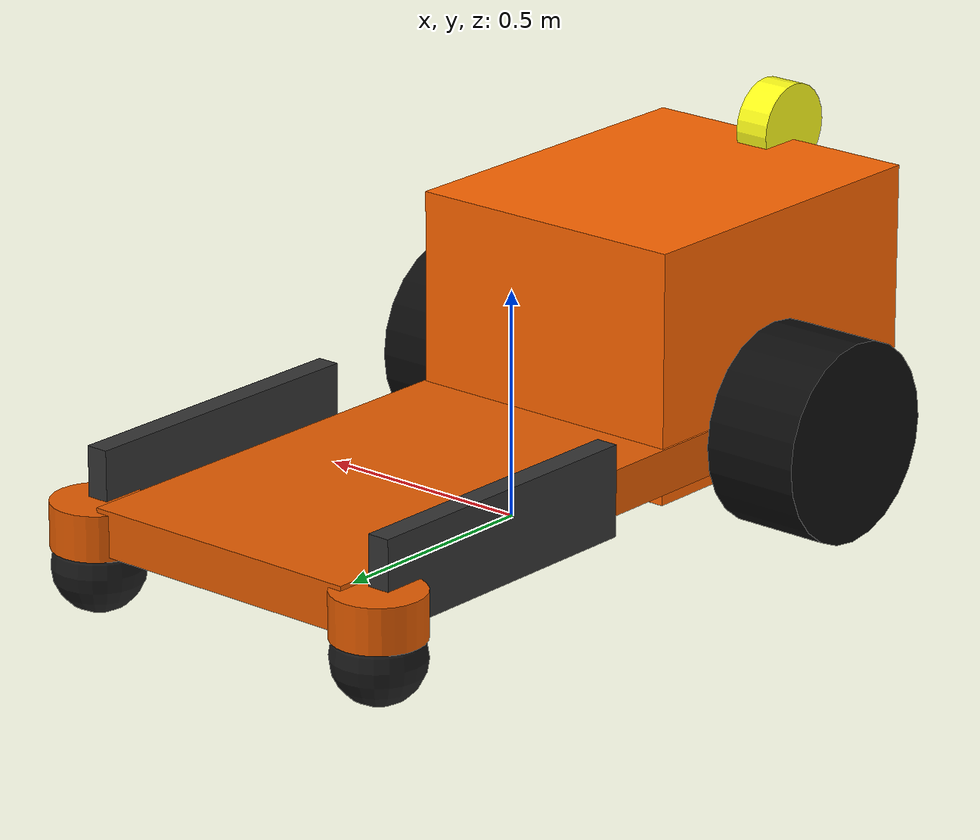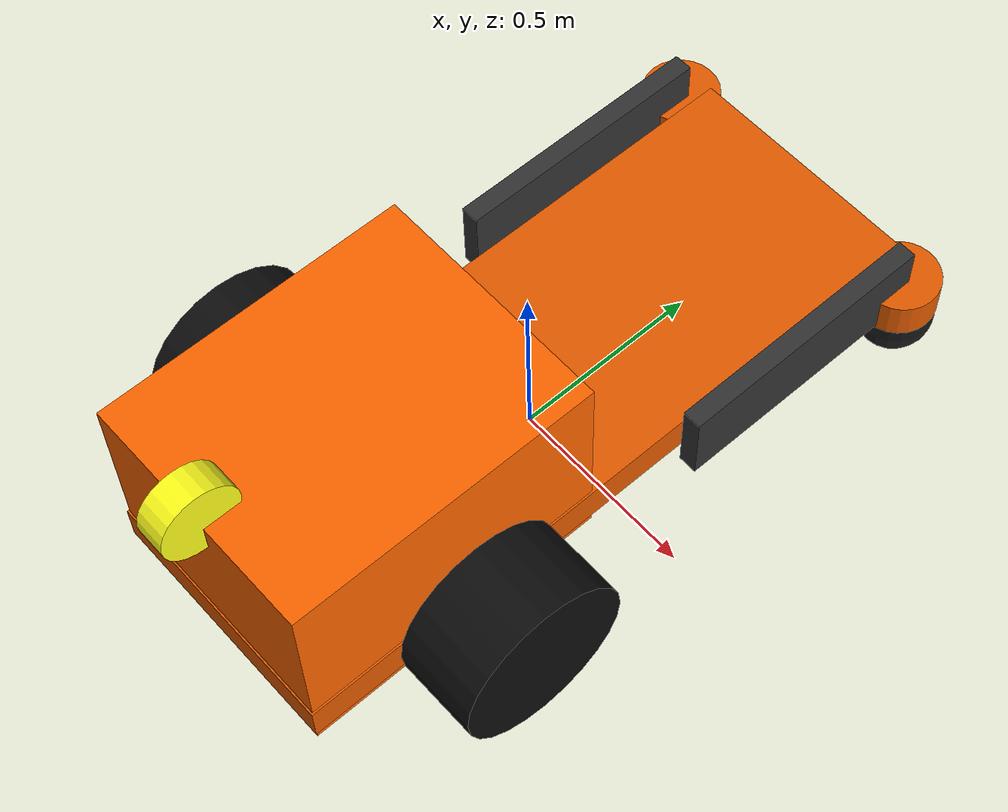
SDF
<sdf version="1.7">
 <world name="runway">
  <plugin filename="gz-sim-physics-system" name="gz::sim::systems::Physics"/>
  <plugin filename="gz-sim-user-commands-system" name="gz::sim::systems::UserCommands"/>
  <plugin filename="gz-sim-scene-broadcaster-system" name="gz::sim::systems::SceneBroadcaster"/>
  <plugin filename="gz-sim-imu-system" name="gz::sim::systems::Imu"/>
  <plugin filename="gz-sim-magnetometer-system" name="gz::sim::systems::Magnetometer"/>
  <plugin filename="gz-sim-navsat-system" name="gz::sim::systems::NavSat"/>
  <scene><ambient>1.0 1.0 1.0</ambient><background>0.8 0.8 0.8</background></scene>
  <light type="directional" name="sun">
   <pose>0 0 10 0 0 0</pose>
   <diffuse>0.8 0.8 0.8 1</diffuse>
   <specular>0.8 0.8 0.8 1</specular>
   <attenuation>
    <range>1000</range>
    <constant>0.9</constant>
    <linear>0.01</linear>
    <quadratic>0.001</quadratic>
   </attenuation>
   <direction>-0.5 0.1 -0.9</direction>
  </light>
  <include><pose degrees="true">0 0 0.15 0 0 90</pose><uri>model://lawnmower</uri></include>
 </world>
</sdf>

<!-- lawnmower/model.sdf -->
<sdf version="1.9">
  <model name="lawnmower">
    <static>0</static>
    <self_collide>false</self_collide>

    <link name="base_link">
      <pose>0 0 0 0 0 0</pose>
      <inertial>
        <pose>-0.1 0 0.1 0 0 0</pose>
        <mass>220.0</mass>
        <inertia>
          <ixx>40</ixx>
          <ixy>0.0</ixy>
          <iyy>150</iyy>
          <ixz>0.0</ixz>
          <iyz>0.0</iyz>
          <izz>150</izz>
        </inertia>
      </inertial>
      <collision name="base_collision">
        <pose>0 0 0.2 0 0 0</pose>
        <geometry>
          <box>
            <size>1.8 0.65 0.55</size>
          </box>
        </geometry>
        <surface>
          <contact>
            <ode />
          </contact>
          <friction>
            <ode />
          </friction>
        </surface>
      </collision>
      <visual name="base_visual_base">
        <pose>0 0 0 0 0 0</pose>
        <geometry>
          <box>
            <size>1.81 0.66 0.1</size>
          </box>
        </geometry>
        <material>
          <ambient>0.9 0.36 0 1</ambient>
          <diffuse>0.9 0.36 0 1</diffuse>
          <specular>0.3 0.3 0.3 1</specular>
          <emissive>0 0 0 1</emissive>
        </material>
      </visual>
      <visual name="base_visual">
        <pose>-0.5 0 0.2 0 0 0</pose>
        <geometry>
          <box>
            <size>0.8 0.65 0.55</size>
          </box>
        </geometry>
        <material>
          <ambient>1.0 0.4 0 1</ambient>
          <diffuse>1.0 0.4 0 1</diffuse>
          <specular>0.3 0.3 0.3 1</specular>
          <emissive>0.2 0.08 0 1</emissive>
        </material>
      </visual>
      <collision name="left_caster_collision">
        <pose>0.85 0.38 -0.1 0 0 0</pose>
        <geometry>
          <sphere>
            <radius>.1</radius>
          </sphere>
        </geometry>
        <surface>
          <friction>
            <ode>
              <mu>0</mu>
              <mu2>0</mu2>
              <slip1>1.0</slip1>
              <slip2>1.0</slip2>
            </ode>
          </friction>
        </surface>
      </collision>
      <visual name="left_caster_visual_base">
        <pose>0.85 0.38 -0.01 0 0 0</pose>
        <geometry>
          <cylinder>
            <radius>0.1</radius>
            <length>0.1</length>
          </cylinder>
        </geometry>
        <material>
          <ambient>0.9 0.36 0 1</ambient>
          <diffuse>0.9 0.36 0 1</diffuse>
          <specular>0.3 0.3 0.3 1</specular>
          <emissive>0 0 0 1</emissive>
        </material>
      </visual>
      <visual name="left_caster_fork">
        <pose>0.5 0.38 0.05 0 0 0</pose>
        <geometry>
          <box>
            <size>0.7 0.05 0.2</size>
          </box>
        </geometry>
        <material>
          <ambient>0.2 0.2 0.2 1</ambient>
          <diffuse>0.2 0.2 0.2 1</diffuse>
          <specular>0.4 0.4 0.4 1</specular>
          <emissive>0 0 0 1</emissive>
        </material>
      </visual>
      <visual name="left_caster_visual">
        <pose>0.85 0.38 -0.1 0 0 0</pose>
        <geometry>
          <sphere>
            <radius>.1</radius>
          </sphere>
        </geometry>
        <material>
          <ambient>0.05 0.05 0.05 1</ambient>
          <diffuse>0.1 0.1 0.1 1</diffuse>
          <specular>0.15 0.15 0.15 1</specular>
          <emissive>0 0 0 1</emissive>
        </material>
      </visual>
      <collision name="right_caster_collision">
        <pose>0.85 -0.38 -0.1 0 0 0</pose>
        <geometry>
          <sphere>
            <radius>.1</radius>
          </sphere>
        </geometry>
        <surface>
          <friction>
            <ode>
              <mu>0</mu>
              <mu2>0</mu2>
              <slip1>1.0</slip1>
              <slip2>1.0</slip2>
            </ode>
          </friction>
        </surface>
      </collision>
      <visual name="right_caster_visual_base">
        <pose>0.85 -0.38 -0.01 0 0 0</pose>
        <geometry>
          <cylinder>
            <radius>0.1</radius>
            <length>0.1</length>
          </cylinder>
        </geometry>
        <material>
          <ambient>0.9 0.36 0 1</ambient>
          <diffuse>0.9 0.36 0 1</diffuse>
          <specular>0.3 0.3 0.3 1</specular>
          <emissive>0 0 0 1</emissive>
        </material>
      </visual>
      <visual name="right_caster_fork">
        <pose>0.5 -0.38 0.05 0 0 0</pose>
        <geometry>
          <box>
            <size>0.7 0.05 0.2</size>
          </box>
        </geometry>
        <material>
          <ambient>0.2 0.2 0.2 1</ambient>
          <diffuse>0.2 0.2 0.2 1</diffuse>
          <specular>0.4 0.4 0.4 1</specular>
          <emissive>0 0 0 1</emissive>
        </material>
      </visual>
      <visual name="right_caster_visual">
        <pose>0.85 -0.38 -0.1 0 0 0</pose>
        <geometry>
          <sphere>
            <radius>.1</radius>
          </sphere>
        </geometry>
        <material>
          <ambient>0.05 0.05 0.05 1</ambient>
          <diffuse>0.1 0.1 0.1 1</diffuse>
          <specular>0.15 0.15 0.15 1</specular>
          <emissive>0 0 0 1</emissive>
        </material>
      </visual>

      <sensor name="imu_sensor" type="imu">
        <gz_frame_id>base_link</gz_frame_id>
        <always_on>1</always_on>
        <pose degrees="true">0 0 0 180 0 0</pose>
        <update_rate>1000</update_rate>
      </sensor>
    </link>

    <joint name="left_wheel_joint" type="revolute">
      <pose relative_to="base_link">-0.45 0.45 0.0215 0 0 0</pose>
      <parent>base_link</parent>
      <child>left_wheel_link</child>
      <axis>
        <xyz>0 1 0</xyz>
        <limit>
          <lower>-1e+16</lower>
          <upper>1e+16</upper>
        </limit>
        <dynamics>
          <damping>0.02</damping>
        </dynamics>
      </axis>
    </joint>
    <link name="left_wheel_link">
      <pose relative_to="left_wheel_joint">0 0 0 0 0 0</pose>
      <inertial>
        <pose>0 0 0 1.57079632679 0 0</pose>
        <mass>8.0</mass>
        <inertia>
          <ixx>0.115</ixx>
          <ixy>0.0</ixy>
          <iyy>0.115</iyy>
          <ixz>0.0</ixz>
          <iyz>0.0</iyz>
          <izz>0.194</izz>
        </inertia>
      </inertial>
      <collision name="left_wheel_link_collision">
        <pose>0 0 0 1.57079632679 0 0</pose>
        <geometry>
          <cylinder>
            <radius>0.22</radius>
            <length>0.22</length>
          </cylinder>
        </geometry>
        <max_contacts>1</max_contacts>
        <surface>
          <friction>
            <torsional>
              <coefficient>0.25</coefficient>
              <use_patch_radius>1</use_patch_radius>
              <surface_radius>0.22</surface_radius>
            </torsional>
            <ode>
              <mu>0.8</mu>
              <mu2>0.8</mu2>
              <fdir1>1 0 0</fdir1>
            </ode>
          </friction>
          <bounce>
            <restitution_coefficient>0</restitution_coefficient>
            <threshold>1e6</threshold>
          </bounce>
          <contact>
            <ode>
              <min_depth>0.005</min_depth>
              <kp>1e8</kp>
            </ode>
          </contact>
        </surface>
      </collision>
      <visual name="left_wheel_link_visual">
        <pose>0 0 0 1.57079632679 0 0</pose>
        <geometry>
          <cylinder>
            <radius>0.22</radius>
            <length>0.22</length>
          </cylinder>
        </geometry>
        <material>
          <ambient>0.02 0.02 0.02 1</ambient>
          <diffuse>0.05 0.05 0.05 1</diffuse>
          <specular>0.2 0.2 0.2 1</specular>
          <emissive>0 0 0 1</emissive>
        </material>
      </visual>
    </link>
    <joint name="right_wheel_joint" type="revolute">
      <pose relative_to="base_link">-0.45 -0.45 0.0215 0 0 0</pose>
      <parent>base_link</parent>
      <child>right_wheel_link</child>
      <axis>
        <xyz>0 1 0</xyz>
        <limit>
          <lower>-1e+16</lower>
          <upper>1e+16</upper>
        </limit>
        <dynamics>
          <damping>0.02</damping>
        </dynamics>
      </axis>
    </joint>
    <link name="right_wheel_link">
      <pose relative_to="right_wheel_joint">0 0 0 0 0 0</pose>
      <inertial>
        <pose>0 0 0 1.57079632679 0 0</pose>
        <mass>8.0</mass>
        <inertia>
          <ixx>0.115</ixx>
          <ixy>0.0</ixy>
          <iyy>0.115</iyy>
          <ixz>0.0</ixz>
          <iyz>0.0</iyz>
          <izz>0.194</izz>
        </inertia>
      </inertial>
      <collision name="right_wheel_link_collision">
        <pose>0 0 0 1.57079632679 0 0</pose>
        <geometry>
          <cylinder>
            <radius>0.22</radius>
            <length>0.22</length>
          </cylinder>
        </geometry>
        <max_contacts>1</max_contacts>
        <surface>
          <friction>
            <torsional>
              <coefficient>0.25</coefficient>
              <use_patch_radius>1</use_patch_radius>
              <surface_radius>0.22</surface_radius>
            </torsional>
            <ode>
              <mu>0.8</mu>
              <mu2>0.8</mu2>
              <fdir1>1 0 0</fdir1>
            </ode>
          </friction>
          <bounce>
            <restitution_coefficient>0</restitution_coefficient>
            <threshold>1e6</threshold>
          </bounce>
          <contact>
            <ode>
              <min_depth>0.005</min_depth>
              <kp>1e8</kp>
            </ode>
          </contact>
        </surface>
      </collision>
      <visual name="right_wheel_link_visual">
        <pose>0 0 0 1.57079632679 0 0</pose>
        <geometry>
          <cylinder>
            <radius>0.22</radius>
            <length>0.22</length>
          </cylinder>
        </geometry>
        <material>
          <ambient>0.02 0.02 0.02 1</ambient>
          <diffuse>0.05 0.05 0.05 1</diffuse>
          <specular>0.2 0.2 0.2 1</specular>
          <emissive>0 0 0 1</emissive>
        </material>
      </visual>
    </link>

    <joint name="engine_visual_joint" type="fixed">
      <pose relative_to="base_link">-0.9 0 0.5 0 0 0</pose>
      <parent>base_link</parent>
      <child>engine_visual_link</child>
      <axis>
        <xyz>1 0 0</xyz>
        <limit>
          <lower>-1e+16</lower>
          <upper>1e+16</upper>
        </limit>
      </axis>
    </joint>
    <link name="engine_visual_link">
      <pose relative_to="engine_visual_joint">0 0 0 0 0 0</pose>
      <visual name="engine_visual_link_visual">
        <pose>0 0 0 1.57079632679 0 0</pose>
        <geometry>
          <cylinder>
            <radius>0.1</radius>
            <length>0.08</length>
          </cylinder>
        </geometry>
        <material>
          <ambient>0.3 0.3 0.2 1</ambient>
          <diffuse>1.0 1.0 0.1 1</diffuse>
          <specular>0 0 0 0</specular>
          <emissive>0 0 0 1</emissive>
        </material>
      </visual>
    </link>

    <plugin filename="gz-sim-joint-state-publisher-system"
      name="gz::sim::systems::JointStatePublisher">
    </plugin>
    <plugin filename="gz-sim-apply-joint-force-system"
      name="gz::sim::systems::ApplyJointForce">
      <joint_name>left_wheel_joint</joint_name>
    </plugin>
    <plugin filename="gz-sim-apply-joint-force-system"
      name="gz::sim::systems::ApplyJointForce">
      <joint_name>right_wheel_joint</joint_name>
    </plugin>

    <plugin name="ArduPilotPlugin" filename="ArduPilotPlugin">
      <fdm_addr>127.0.0.1</fdm_addr>
      <fdm_port_in>9002</fdm_port_in>
      <connectionTimeoutMaxCount>5</connectionTimeoutMaxCount>
      <lock_step>1</lock_step>

      <modelXYZToAirplaneXForwardZDown degrees="true">0 0 0 180 0 0</modelXYZToAirplaneXForwardZDown>
      <gazeboXYZToNED degrees="true">0 0 0 180 0 90</gazeboXYZToNED>

      <imuName>imu_sensor</imuName>

      <control channel="0">
        <jointName>left_wheel_joint</jointName>
        <useForce>1</useForce>
        <multiplier>46</multiplier>
        <offset>-0.5</offset>
        <servo_min>1000</servo_min>
        <servo_max>2000</servo_max>
        <type>VELOCITY</type>
        <p_gain>5.0</p_gain>
        <i_gain>2.0</i_gain>
        <d_gain>0</d_gain>
        <i_max>1.0</i_max>
        <i_min>-1.0</i_min>
        <cmd_max>1000.0</cmd_max>
        <cmd_min>-1000.0</cmd_min>
        <cmd_offset>0.0</cmd_offset>
      </control>
      <control channel="2">
        <jointName>right_wheel_joint</jointName>
        <useForce>1</useForce>
        <multiplier>46</multiplier>
        <offset>-0.5</offset>
        <servo_min>1000</servo_min>
        <servo_max>2000</servo_max>
        <type>VELOCITY</type>
        <p_gain>5.0</p_gain>
        <i_gain>2.0</i_gain>
        <d_gain>0</d_gain>
        <i_max>1.0</i_max>
        <i_min>-1.0</i_min>
        <cmd_max>1000.0</cmd_max>
        <cmd_min>-1000.0</cmd_min>
        <cmd_offset>0.0</cmd_offset>
      </control>
    </plugin>
  </model>
</sdf>
